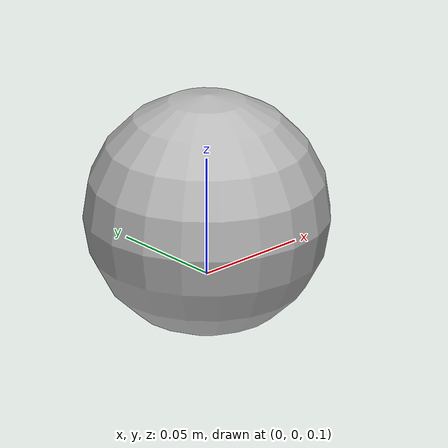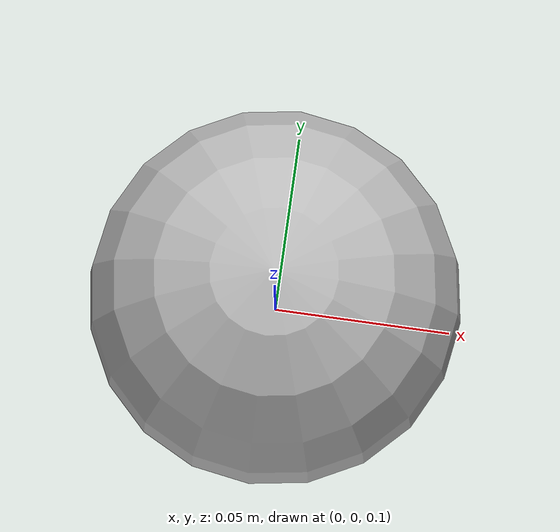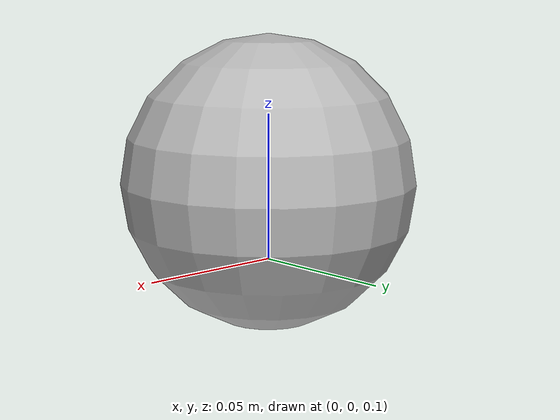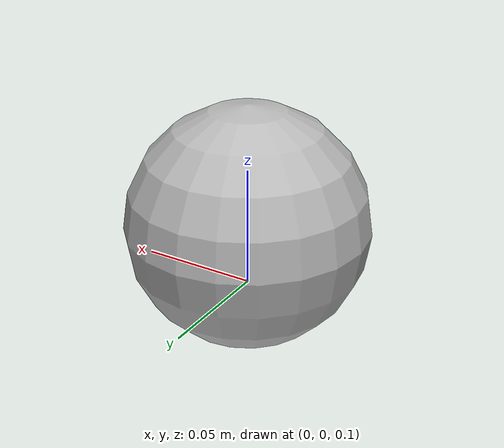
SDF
<?xml version="1.0" ?>
<sdf version="1.5">
  <model name="frc2016_ball">
    <pose>0 0 0.127 0 0 0</pose>
    <link name="link">
      <inertial>
        <mass>0.213</mass>
        <inertia>
          <ixx>0.003226667</ixx>
          <ixy>0</ixy>
          <ixz>0</ixz>
          <iyy>0.003226667</iyy>
          <iyz>0</iyz>
          <izz>0.003226667</izz>
        </inertia>
      </inertial>

      <visual name="visual">
        <geometry>
          <sphere>
            <radius>0.05</radius>
          </sphere>
        </geometry>
      </visual>

      <collision name="collision">
        <geometry>
          <sphere>
            <radius>0.05</radius>
          </sphere>
        </geometry>
        <surface>
          <bounce>
            <restitution_coefficient>0.9</restitution_coefficient>
            <threshold>0</threshold>
          </bounce>
          <contact>
            <bullet>
            </bullet>
          </contact>
        </surface>
      </collision>
    </link>
  </model>
</sdf>
